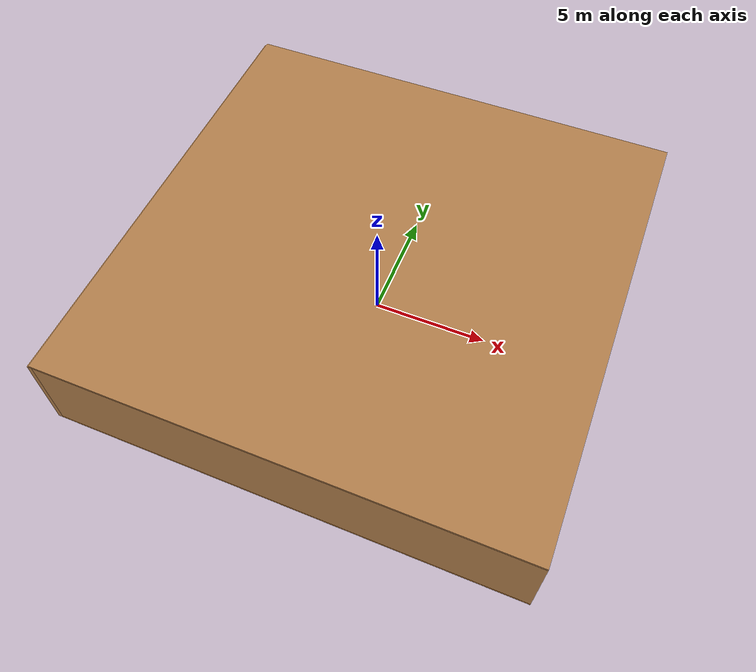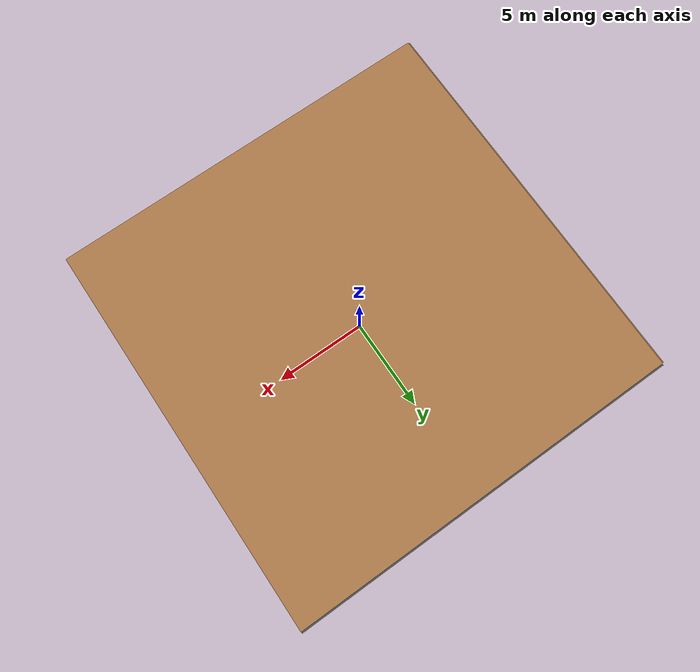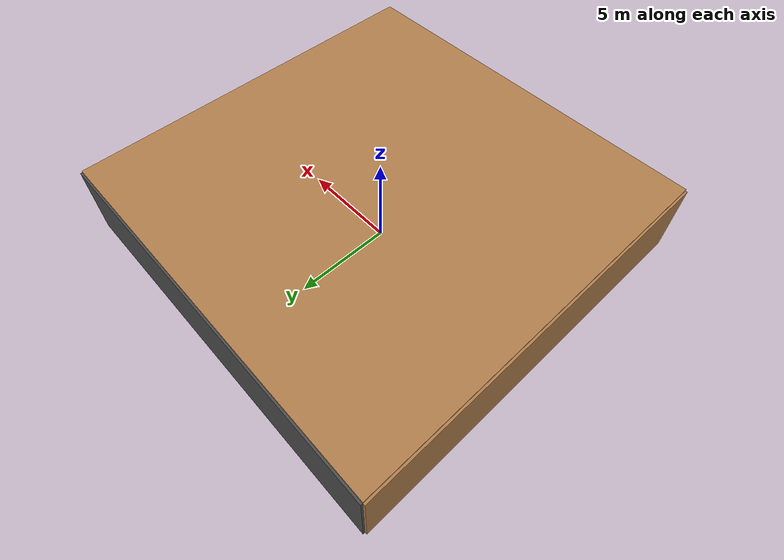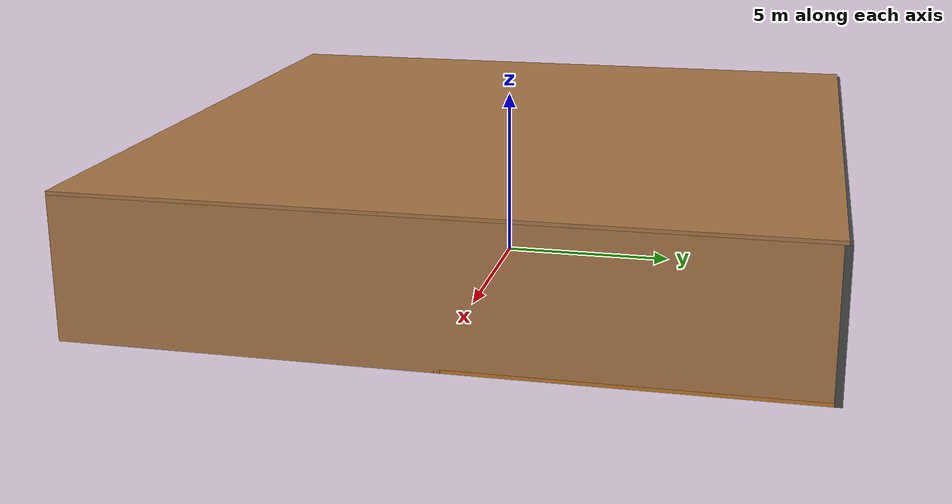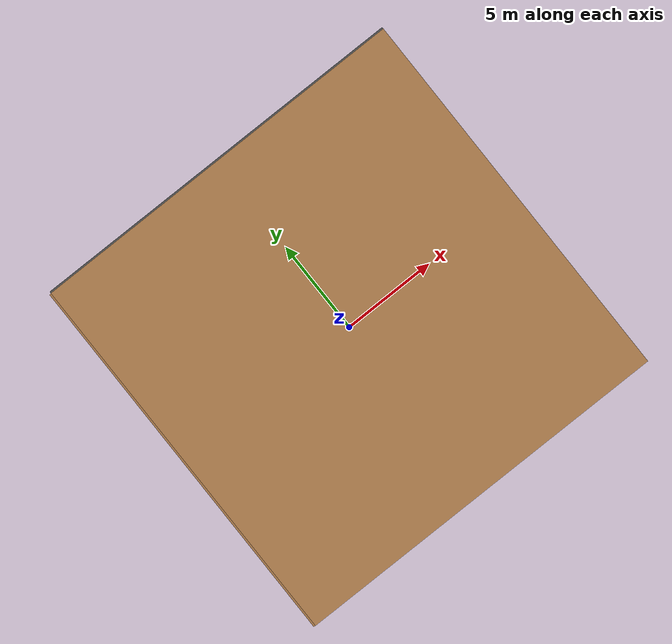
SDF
<sdf version="1.4">
 <world name="default">
  <physics type="ode">
   <max_step_size>0.001</max_step_size>
   <real_time_factor>1</real_time_factor>
   <real_time_update_rate>1000</real_time_update_rate>
   <gravity>0 0 -9.8</gravity>
  </physics>
  <scene><ambient>0.4 0.4 0.4 1</ambient><background>0.7 0.7 0.7 1</background><shadows>1</shadows></scene>
  <model name="Surrounding">
   <static>1</static>
   <link name="Ceiling">
    <collision name="Ceiling_Collision"><geometry><box><size>20 20 0.1</size></box></geometry></collision>
    <visual name="Ceiling_Visual">
     <geometry><box><size>20 20 0.1</size></box></geometry>
     <material>
      <script><uri>file://media/materials/scripts/gazebo.material</uri><name>Gazebo/WoodPallet</name></script>
     </material>
    </visual>
    <pose>0 0 4.05 0 0 0</pose>
   </link>
   <link name="Wall_South">
    <collision name="Wall_South_Collision">
     <geometry><box><size>20 0 4</size></box></geometry>
     <pose>0 0 2 0 -0 0</pose>
    </collision>
    <visual name="Wall_South_Visual">
     <pose>0 0 2 0 -0 0</pose>
     <geometry><box><size>20 0 4</size></box></geometry>
     <material>
      <script><uri>file://media/materials/scripts/gazebo.material</uri><name>Gazebo/WoodFloor</name></script>
     </material>
    </visual>
    <velocity_decay><linear>0</linear><angular>0</angular></velocity_decay>
    <pose>0 -10 0 0 -0 0</pose>
   </link>
   <link name="Wall_East">
    <collision name="Wall_21_Collision">
     <geometry><box><size>20 0 4</size></box></geometry>
     <pose>0 0 2 0 -0 0</pose>
    </collision>
    <visual name="Wall_21_Visual">
     <pose>0 0 2 0 -0 0</pose>
     <geometry><box><size>20 0 4</size></box></geometry>
     <material>
      <script><uri>file://media/materials/scripts/gazebo.material</uri><name>Gazebo/Wood</name></script>
     </material>
    </visual>
    <velocity_decay><linear>0</linear><angular>0</angular></velocity_decay>
    <pose>10 0 0 0 -0 1.5708</pose>
   </link>
   <link name="Wall_North">
    <collision name="Wall_22_Collision">
     <geometry><box><size>20 0.2 4</size></box></geometry>
     <pose>0 0 2 0 -0 0</pose>
    </collision>
    <visual name="Wall_22_Visual">
     <pose>0 0 2 0 -0 0</pose>
     <geometry><box><size>20 0.2 4</size></box></geometry>
     <material>
      <script><uri>file://media/materials/scripts/gazebo.material</uri><name>Gazebo/DarkGrey</name></script>
     </material>
    </visual>
    <velocity_decay><linear>0</linear><angular>0</angular></velocity_decay>
    <pose>0 10 0 0 -0 0</pose>
   </link>
   <link name="Wall_West">
    <collision name="Wall_23_Collision">
     <geometry><box><size>20 0.2 4</size></box></geometry>
     <pose>0 0 2 0 -0 0</pose>
    </collision>
    <visual name="Wall_23_Visual">
     <pose>0 0 2 0 -0 0</pose>
     <geometry><box><size>20 0.2 4</size></box></geometry>
     <material>
      <script><uri>file://media/materials/scripts/gazebo.material</uri><name>Gazebo/WoodPallet</name></script>
     </material>
    </visual>
    <velocity_decay><linear>0</linear><angular>0</angular></velocity_decay>
    <pose>-10 0 0 0 0 -1.5708</pose>
   </link>
   <link name="Ground_link">
    <collision name="collision">
     <pose>0 0 .05 0 -0 0</pose>
     <geometry><box><size>20 20 0.1</size></box></geometry>
    </collision>
    <visual name="visual">
     <pose>0 0 .05 0 -0 0</pose>
     <geometry><box><size>20 20 0.1</size></box></geometry>
     <material>
      <script>
       <uri>file://media/materials/scripts/gazebo.material</uri>
       <name>Gazebo/OrangeTransparent</name>
      </script>
     </material>
    </visual>
   </link>
   <static>1</static>
  </model>
  <spherical_coordinates>
   <surface_model>EARTH_WGS84</surface_model>
   <latitude_deg>0</latitude_deg>
   <longitude_deg>0</longitude_deg>
   <elevation>0</elevation>
   <heading_deg>0</heading_deg>
  </spherical_coordinates>
  <light name="lightball_0" type="diffuse">
   <diffuse>0.8 0.8 0.8 1</diffuse>
   <specular>0.2 0.2 0.2 1</specular>
   <attenuation>
    <range>100</range>
    <constant>0.7</constant>
    <linear>0.01</linear>
    <quadratic>0.001</quadratic>
   </attenuation>
   <direction>-0.5 0.1 -0.9</direction>
   <pose>-7.61225122519 9.35020279854 2.48896067483 0 0 0</pose>
  </light>
  <light name="lightball_1" type="diffuse">
   <diffuse>0.8 0.8 0.8 1</diffuse>
   <specular>0.2 0.2 0.2 1</specular>
   <attenuation>
    <range>100</range>
    <constant>0.7</constant>
    <linear>0.01</linear>
    <quadratic>0.001</quadratic>
   </attenuation>
   <direction>-0.5 0.1 -0.9</direction>
   <pose>-7.83773514733 -6.00120862659 3.60205487973 0 0 0</pose>
  </light>
  <light name="lightball_2" type="diffuse">
   <diffuse>0.8 0.8 0.8 1</diffuse>
   <specular>0.2 0.2 0.2 1</specular>
   <attenuation>
    <range>100</range>
    <constant>0.7</constant>
    <linear>0.01</linear>
    <quadratic>0.001</quadratic>
   </attenuation>
   <direction>-0.5 0.1 -0.9</direction>
   <pose>-7.42434491969 6.60615853787 3.10295994366 0 0 0</pose>
  </light>
  <light name="lightball_3" type="diffuse">
   <diffuse>0.8 0.8 0.8 1</diffuse>
   <specular>0.2 0.2 0.2 1</specular>
   <attenuation>
    <range>100</range>
    <constant>0.7</constant>
    <linear>0.01</linear>
    <quadratic>0.001</quadratic>
   </attenuation>
   <direction>-0.5 0.1 -0.9</direction>
   <pose>3.03882679976 -6.33317421852 3.25854766132 0 0 0</pose>
  </light>
  <light name="lightball_4" type="diffuse">
   <diffuse>0.8 0.8 0.8 1</diffuse>
   <specular>0.2 0.2 0.2 1</specular>
   <attenuation>
    <range>100</range>
    <constant>0.7</constant>
    <linear>0.01</linear>
    <quadratic>0.001</quadratic>
   </attenuation>
   <direction>-0.5 0.1 -0.9</direction>
   <pose>-1.47631653906 3.30701945956 0.714998553043 0 0 0</pose>
  </light>
  <include><uri>model://cabinet</uri><pose>-8.34999927444 7.15990756493 0 0 0 0.00580381114268</pose></include>
  <include><uri>model://table</uri><pose>-4.89542676006 -2.27464014829 0 0 0 2.7088683395</pose></include>
  <include><uri>model://cabinet</uri><pose>-2.40520654627 -7.42231083916 0 0 0 2.07469572107</pose></include>
  <include><uri>model://cabinet</uri><pose>3.43038581828 -3.34386879964 0 0 0 1.5923253587</pose></include>
 </world>
</sdf>

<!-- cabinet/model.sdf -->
<sdf version="1.5">
  <model name="cabinet">
    <static>true</static>
    <link name="cabinet_bottom_plate">
      <inertial>
        <pose>0 0 -1 0 0 0</pose>
        <inertia>
          <ixx>2.050000</ixx>
          <ixy>0</ixy>
          <ixz>0</ixz>
          <iyy>2.050000</iyy>
          <iyz>0</iyz>
          <izz>2.050000</izz>
        </inertia>
        <mass>25.000000</mass>
      </inertial>
      <collision name="cabinet_bottom_plate_geom">
        <pose>0 0 0.010000 0 0 0</pose>
        <geometry>
          <box>
            <size>0.450000 0.450000 0.020000</size>
          </box>
        </geometry>
      </collision>
      <visual name="cabinet_bottom_plate_geom_visual">
        <pose>0 0 0.010000 0 0 0</pose>
        <geometry>
          <box>
            <size>0.450000 0.450000 0.020000</size>
          </box>
        </geometry>
        <material>
          <script>
            <uri>model://media/materials/scripts/gazebo.material</uri>
            <name>Gazebo/Wood</name>
          </script>
        </material>
      </visual>
      <collision name="cabinet_bottom_plate_geom_cabinet_back_plate">
        <pose>0.235000 0 0.510000 0 0 0</pose>
        <geometry>
          <box>
            <size>0.020000 0.450000 1.020000</size>
          </box>
        </geometry>
      </collision>
      <visual name="cabinet_bottom_plate_geom_cabinet_back_plate_visual">
        <pose>0.235000 0 0.510000 0 0 0</pose>
        <geometry>
          <box>
            <size>0.020000 0.450000 1.020000</size>
          </box>
        </geometry>
        <material>
          <script>
            <uri>model://media/materials/scripts/gazebo.material</uri>
            <name>Gazebo/Wood</name>
          </script>
        </material>
      </visual>
      <collision name="cabinet_bottom_plate_geom_cabinet_left_plate">
        <pose>0 0.235000 0.510000 0 0 0</pose>
        <geometry>
          <box>
            <size>0.450000 0.020000 1.020000</size>
          </box>
        </geometry>
      </collision>
      <visual name="cabinet_bottom_plate_geom_cabinet_left_plate_visual">
        <pose>0 0.235000 0.510000 0 0 0</pose>
        <geometry>
          <box>
            <size>0.450000 0.020000 1.020000</size>
          </box>
        </geometry>
        <material>
          <script>
            <uri>model://media/materials/scripts/gazebo.material</uri>
            <name>Gazebo/Wood</name>
          </script>
        </material>
      </visual>
      <collision name="cabinet_bottom_plate_geom_cabinet_middle_plate">
        <pose>0 0 0.510000 0 0 0</pose>
        <geometry>
          <box>
            <size>0.450000 0.450000 0.020000</size>
          </box>
        </geometry>
      </collision>
      <visual name="cabinet_bottom_plate_geom_cabinet_middle_plate_visual">
        <pose>0 0 0.510000 0 0 0</pose>
        <geometry>
          <box>
            <size>0.450000 0.450000 0.020000</size>
          </box>
        </geometry>
        <material>
          <script>
            <uri>model://media/materials/scripts/gazebo.material</uri>
            <name>Gazebo/Wood</name>
          </script>
        </material>
      </visual>
      <collision name="cabinet_bottom_plate_geom_cabinet_right_plate">
        <pose>0 -0.235000 0.510000 0 0 0</pose>
        <geometry>
          <box>
            <size>0.450000 0.020000 1.020000</size>
          </box>
        </geometry>
      </collision>
      <visual name="cabinet_bottom_plate_geom_cabinet_right_plate_visual">
        <pose>0 -0.235000 0.510000 0 0 0</pose>
        <geometry>
          <box>
            <size>0.450000 0.020000 1.020000</size>
          </box>
        </geometry>
        <material>
          <script>
            <uri>model://media/materials/scripts/gazebo.material</uri>
            <name>Gazebo/Wood</name>
          </script>
        </material>
      </visual>
      <collision name="cabinet_bottom_plate_geom_cabinet_top_plate">
        <pose>0 0 1.010000 0 0 0</pose>
        <geometry>
          <box>
            <size>0.450000 0.450000 0.020000</size>
          </box>
        </geometry>
      </collision>
      <visual name="cabinet_bottom_plate_geom_cabinet_top_plate_visual">
        <pose>0 0 1.010000 0 0 0</pose>
        <geometry>
          <box>
            <size>0.450000 0.450000 0.020000</size>
          </box>
        </geometry>
        <material>
          <script>
            <uri>model://media/materials/scripts/gazebo.material</uri>
            <name>Gazebo/Wood</name>
          </script>
        </material>
      </visual>
    </link>
  </model>
</sdf>

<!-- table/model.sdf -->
<sdf version="1.5">
  <model name="table">
    <static>true</static>
    <link name="link">
      <collision name="surface">
        <pose>0 0 1.0 0 0 0</pose>
        <geometry>
          <box>
            <size>1.5 0.8 0.03</size>
          </box>
        </geometry>
        <surface>
          <friction>
            <ode>
              <mu>0.6</mu>
              <mu2>0.6</mu2>
            </ode>
          </friction>
        </surface>
      </collision>
      <visual name="visual1">
        <pose>0 0 1.0 0 0 0</pose>
        <geometry>
          <box>
            <size>1.5 0.8 0.03</size>
          </box>
        </geometry>
        <material>
          <script>
            <uri>model://media/materials/scripts/gazebo.material</uri>
            <name>Gazebo/Wood</name>
          </script>
        </material>
      </visual>
      <collision name="front_left_leg">
        <pose>0.68 0.38 0.5 0 0 0</pose>
        <geometry>
          <cylinder>
            <radius>0.02</radius>
            <length>1.0</length>
          </cylinder>
        </geometry>
      </collision>
      <visual name="front_left_leg">
        <pose>0.68 0.38 0.5 0 0 0</pose>
        <geometry>
          <cylinder>
            <radius>0.02</radius>
            <length>1.0</length>
          </cylinder>
        </geometry>
        <material>
          <script>
            <uri>model://media/materials/scripts/gazebo.material</uri>
            <name>Gazebo/Grey</name>
          </script>
        </material>
      </visual>
      <collision name="front_right_leg">
        <pose>0.68 -0.38 0.5 0 0 0</pose>
        <geometry>
          <cylinder>
            <radius>0.02</radius>
            <length>1.0</length>
          </cylinder>
        </geometry>
      </collision>
      <visual name="front_right_leg">
        <pose>0.68 -0.38 0.5 0 0 0</pose>
        <geometry>
          <cylinder>
            <radius>0.02</radius>
            <length>1.0</length>
          </cylinder>
        </geometry>
        <material>
          <script>
            <uri>model://media/materials/scripts/gazebo.material</uri>
            <name>Gazebo/Grey</name>
          </script>
        </material>
      </visual>
      <collision name="back_right_leg">
        <pose>-0.68 -0.38 0.5 0 0 0</pose>
        <geometry>
          <cylinder>
            <radius>0.02</radius>
            <length>1.0</length>
          </cylinder>
        </geometry>
      </collision>
      <visual name="back_right_leg">
        <pose>-0.68 -0.38 0.5 0 0 0</pose>
        <geometry>
          <cylinder>
            <radius>0.02</radius>
            <length>1.0</length>
          </cylinder>
        </geometry>
        <material>
          <script>
            <uri>model://media/materials/scripts/gazebo.material</uri>
            <name>Gazebo/Grey</name>
          </script>
        </material>
      </visual>
      <collision name="back_left_leg">
        <pose>-0.68 0.38 0.5 0 0 0</pose>
        <geometry>
          <cylinder>
            <radius>0.02</radius>
            <length>1.0</length>
          </cylinder>
        </geometry>
      </collision>
      <visual name="back_left_leg">
        <pose>-0.68 0.38 0.5 0 0 0</pose>
        <geometry>
          <cylinder>
            <radius>0.02</radius>
            <length>1.0</length>
          </cylinder>
        </geometry>
        <material>
          <script>
            <uri>model://media/materials/scripts/gazebo.material</uri>
            <name>Gazebo/Grey</name>
          </script>
        </material>
      </visual>
    </link>
  </model>
</sdf>
